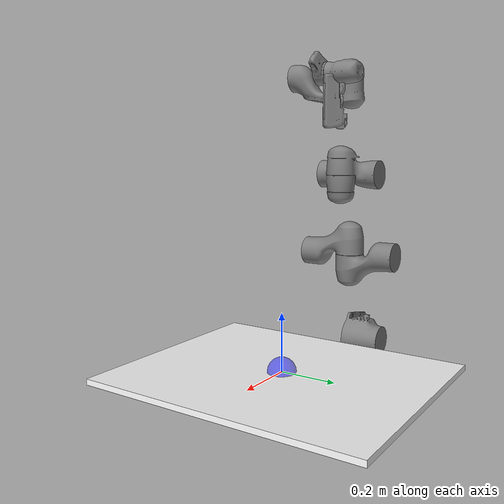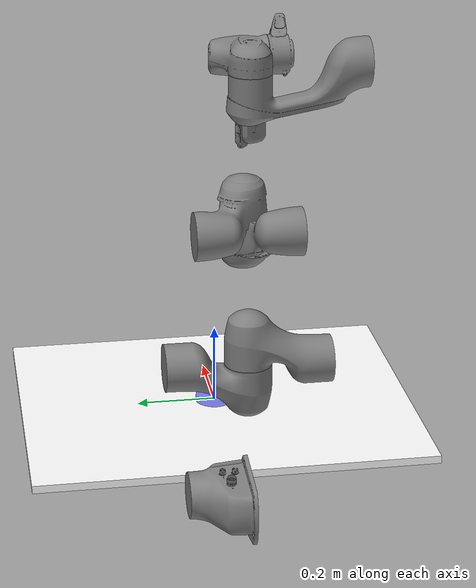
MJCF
<mujoco model="panda">
    <compiler angle="radian" />
    <!--option timestep="0.01" gravity="0 0 0" integrator="Euler" /-->
    <option timestep="0.01" gravity="0 0 0" integrator="Euler" />
    <size njmax="5000" nconmax="1000" />
    <asset>
        <mesh name="link0" file="link0.stl" />
        <mesh name="link1" file="link1.stl" />
        <mesh name="link2" file="link2.stl" />
        <mesh name="link3" file="link3.stl" />
        <mesh name="link4" file="link4.stl" />
        <mesh name="link5" file="link5.stl" />
        <mesh name="link6" file="link6.stl" />
        <mesh name="link7" file="link7.stl" />
        <mesh name="hand" file="hand.stl" />
        <mesh name="finger" file="finger.stl" />
    </asset>
    <worldbody>

        <geom rgba="1 1 1 1" name="table" type="box" pos="0 0 -0.01" size="0.4 0.5 0.01"/>

        <body name="panda_link0" pos="-0.5 0 0.0">
            <geom type="mesh" mesh="link0" />
                <body name="panda_link1" pos="0.0 0 0.333">
                    <inertial pos="1.1399e-05 -0.0312655 -0.0693733" quat="0.98466 0.174481 -0.000101815 0.000347662" mass="2.77281" diaginertia="0.0164224 0.0153969 0.00546286" />
                    <joint name="panda_joint1" pos="0 0 0" axis="0 0 1" limited="true" range="-2.8973 2.8973" damping="0.5" frictionloss="0"   />
                    <geom type="mesh" mesh="link1" />
                    <body name="panda_link2" pos="0 0 0" quat="0.707107 -0.707107 0 0">
                        <inertial pos="-1.31766e-05 -0.0703216 0.0311782" quat="0.57484 0.818266 -6.05764e-05 -6.61626e-05" mass="2.7996" diaginertia="0.016787 0.0157415 0.00553027" />
                        <joint name="panda_joint2" pos="0 0 0" axis="0 0 1" limited="true" range="-1.7628 1.7628" damping="0.5" frictionloss="0" />
                        <geom type="mesh" mesh="link2" />
                        <body name="panda_link3" pos="0 -0.316 0" quat="0.707107 0.707107 0 0">
                            <inertial pos="0.0443483 0.0249283 -0.03813" quat="0.0615263 0.349824 0.234291 0.904956" mass="2.14603" diaginertia="0.00915257 0.00896477 0.00384742" />
                            <joint name="panda_joint3" pos="0 0 0" axis="0 0 1" limited="true" range="-2.8973 2.8973" damping="0.5" frictionloss="0"/>
                            <geom type="mesh" mesh="link3" />
                            <body name="panda_link4" pos="0.0825 0 0" quat="0.707107 0.707107 0 0">
                                <inertial pos="-0.0385503 0.0395256 0.0247162" quat="0.813566 0.465041 0.309792 0.160858" mass="2.18807" diaginertia="0.00946899 0.00928491 0.00396694" />
                                <joint name="panda_joint4" pos="0 0 0" axis="0 0 1" limited="true" range="-3.0718 -0.0698" damping="0.5" frictionloss="0" />
                                <geom type="mesh" mesh="link4" />
                                <body name="panda_link5" pos="-0.0825 0.384 0" quat="0.707107 -0.707107 0 0">
                                    <inertial pos="-6.36776e-05 0.0384124 -0.10997" quat="0.990767 -0.135571 0.000963106 0.000694406" mass="3.19545" diaginertia="0.0278873 0.0268823 0.00569569" />
                                    <joint name="panda_joint5" pos="0 0 0" axis="0 0 1" limited="true" range="-2.8973 2.8973" damping="0.5" frictionloss="0"/>
                                    <geom type="mesh" mesh="link5" />
                                    <body name="panda_link6" pos="0 0 0" quat="0.707107 0.707107 0 0">
                                        <inertial pos="0.0510023 0.00693267 0.00616899" quat="-0.0460841 0.754362 0.044494 0.653325" mass="1.35761" diaginertia="0.00412168 0.0033698 0.00213304" />
                                        <joint name="panda_joint6" pos="0 0 0" axis="0 0 1" limited="true" range="-0.0175 3.7525" damping="0.5" frictionloss="0" />
                                        <geom type="mesh" mesh="link6" />
                                        <body name="panda_link7" pos="0.088 0 0" quat="0.707107 0.707107 0 0">
                                            <inertial pos="0.00370456 0.00370629 0.111054" quat="0.255962 0.284553 0.687036 0.617653" mass="1.08813" diaginertia="0.00355525 0.00277167 0.00141387" />
                                            <joint name="panda_joint7" pos="0 0 0" axis="0 0 1" limited="true" range="-2.8973 2.8973" damping="0.5" frictionloss="0"/>
                                            <!--site name="site_panda_link7" size="0.1"/-->
                                            <geom type="mesh" mesh="link7" />
                                            <geom pos="0 0 0.107" quat="0.92388 0 0 -0.382683" type="mesh" mesh="hand" />

                                        </body>
                                    </body>
                                </body>
                            </body>
                        </body>
                    </body>
                </body>
            </body>

             <body name="goal" pos="0.0 0.0 0.0">
            <geom rgba="0 0 1 0.5" type="sphere" size="0.05 0.001 0.1" density='0.00001'/>
            <joint name="goal_slidex" type="slide" pos="0 0 0" axis="1 0 0" range="-10.3213 10.3" damping="1.0"/>
            <joint name="goal_slidey" type="slide" pos="0 0 0" axis="0 1 0" range="-10.3213 10.3" damping="1.0"/>
            <joint name="goal_slidez" type="slide" pos="0 0 0" axis="0 0 1" range="-10.3213 10.3" damping="1.0"/>
        </body>

    </worldbody>

    <actuator>

        <motor joint="panda_joint1" ctrlrange="-200 200" ctrllimited="true" />
        <motor joint="panda_joint2" ctrlrange="-200 200" ctrllimited="true" />
        <motor joint="panda_joint3" ctrlrange="-200 200" ctrllimited="true" />
        <motor joint="panda_joint4" ctrlrange="-200 200" ctrllimited="true" />
        <motor joint="panda_joint5" ctrlrange="-200 200" ctrllimited="true" />
        <motor joint="panda_joint6" ctrlrange="-200 200" ctrllimited="true" />
        <motor joint="panda_joint7" ctrlrange="-200 200" ctrllimited="true" />

    </actuator>

</mujoco>
